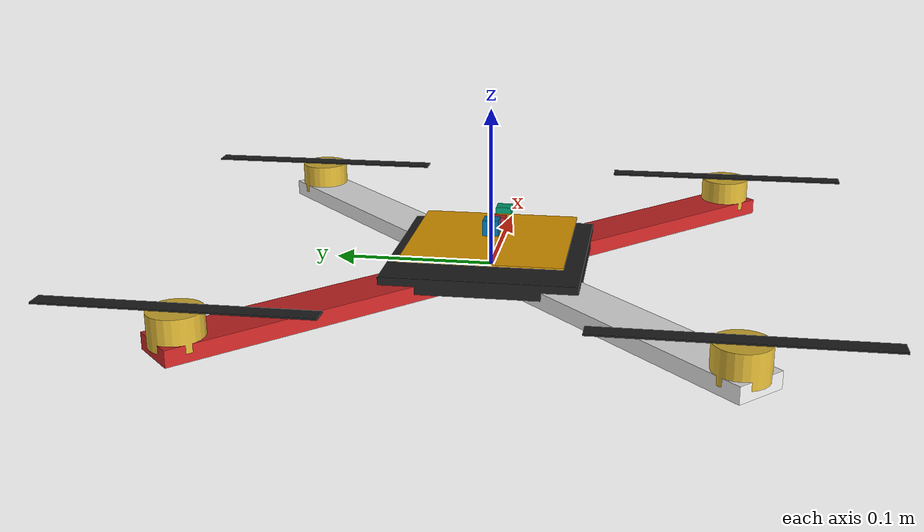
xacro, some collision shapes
<?xml version="1.0"?>
<robot xmlns:xacro="http://www.ros.org/wiki/xacro" name="Kwad">
	<xacro:property name="width" value="0.0315" />
	<xacro:property name="length" value="0.45" />
	<xacro:property name="height" value="0.01" />
	<xacro:property name="mass_fr" value="0.5" />
	<xacro:property name="mass_pr" value="0.0055" />
	<xacro:property name="pi_value" value="3.14159263" />
	<xacro:property name="radiusp" value="0.20" />
	<xacro:property name="prop_loc" value="0.15909" />
	<xacro:include filename="$(find urc_gazebo)/urdf/material.xacro" />
	<xacro:include filename="$(find urc_gazebo)/urdf/drone.gazebo" />
	<xacro:include filename="$(find urc_gazebo)/urdf/drone_inertials.xacro" />
	<!-- Define inertial macro -->
	<xacro:macro name="default_inertial" params="mass p ix_value iy_value iz_value" >
		<inertial>
			<origin xyz="0 0 0" rpy="0 0 ${p}" />
			<mass value="${mass}" />
			<inertia ixx="${ix_value}" ixy="0" ixz="0"
					 iyy="${iy_value}" iyz="0" izz="${iz_value}" />
		</inertial>
	</xacro:macro>
	<link name="base_link1">
		<visual>
			<origin xyz="0 0 0" rpy="0 0 ${pi_value/4}" />

			<geometry>
				<box size="${width} ${length} ${height}" />
			</geometry>

			<material name="red" />
		</visual>

		<collision>
			<origin xyz="0 0 0" rpy="0 0 ${pi_value/4}" />

			<geometry>
				<box size="${width} ${length} ${height}" />
			</geometry>
		</collision>

		<xacro:default_inertial mass="${mass_fr}" p="${pi_value/4}" ix_value="${0.04989/2}" iy_value="${0.04989/2}" iz_value="${0.24057/2}" />

	</link>
	<link name="base_link2">
		<visual>
			<origin xyz="0 0 0" rpy="0 0 ${-pi_value/4}" />

			<geometry>
				<box size="${width} ${length} ${height}" />
			</geometry>

			<material name="white" />
		</visual>

		<collision>
			<origin xyz="0 0 0" rpy="0 0 ${-pi_value/4}" />

			<geometry>
				<box size="${width} ${length} ${height}" />
			</geometry>
		</collision>

		<xacro:default_inertial mass="${mass_fr}" p="${-pi_value/4}" ix_value="${0.04989/2}" iy_value="${0.04989/2}" iz_value="${0.24057/2}" />
	</link>
	<link name="plate1">
		<visual>
			<origin xyz="0 0 0" rpy="0 0 0" />

			<geometry>
				<box size="${0.12} ${0.12} ${0.01}" />
			</geometry>

			<material name="black" />
		</visual>

		<collision>
			<origin xyz="0 0 0" rpy="0 0 0" />

			<geometry>
				<box size="${0.12} ${0.12} ${0.01}" />
			</geometry>
		</collision>

		<xacro:default_inertial mass="${0.01}" p="${0}" ix_value="${0}" iy_value="${0}" iz_value="${2.4-5}" />
	</link>

	<link name="plate2">
		<visual>
			<origin xyz="0 0 0" rpy="0 0 0" />

			<geometry>
				<box size="${0.05} ${0.03} ${0.005}" />
			</geometry>

			<material name="blue" />
		</visual>

		<collision>
			<origin xyz="0 0 0" rpy="0 0 0" />

			<geometry>
				<box size="${0.05} ${0.03} ${0.005}" />
			</geometry>
		</collision>

		<xacro:default_inertial mass="${0.001}" p="${0}" ix_value="${0}" iy_value="${0}" iz_value="${8.1666-7}" />
	</link>
	<link name="cyl1">
		<visual>
			<origin xyz="0 0 0" rpy="0 0 0" />

			<geometry>
				<cylinder radius="0.016" length="0.02" />
			</geometry>

			<material name="golden" />
		</visual>

		<collision>
			<origin xyz="0 0 0" rpy="0 0 0" />

			<geometry>
				<cylinder radius="0.016" length="0.02" />
			</geometry>
		</collision>

		<xacro:default_inertial mass="${0.01}" p="${0}" ix_value="${8.95e-6}" iy_value="${8.95e-6}" iz_value="${2.23e-4}" />
	</link>
	<link name="cyl2">
		<visual>
			<origin xyz="0 0 0" rpy="0 0 0" />

			<geometry>
				<cylinder radius="0.016" length="0.02" />
			</geometry>

			<material name="golden" />
		</visual>

		<collision>
			<origin xyz="0 0 0" rpy="0 0 0" />

			<geometry>
				<cylinder radius="0.016" length="0.02" />
			</geometry>
		</collision>

		<xacro:default_inertial mass="${0.01}" p="${0}" ix_value="${8.95e-6}" iy_value="${8.95e-6}" iz_value="${2.23e-4}" />
	</link>
	<link name="cyl3">
		<visual>
			<origin xyz="0 0 0" rpy="0 0 0" />

			<geometry>
				<cylinder radius="0.016" length="0.02" />
			</geometry>

			<material name="golden" />
		</visual>

		<collision>
			<origin xyz="0 0 0" rpy="0 0 0" />

			<geometry>
				<cylinder radius="0.016" length="0.02" />
			</geometry>
		</collision>

		<xacro:default_inertial mass="${0.01}" p="${0}" ix_value="${8.95e-6}" iy_value="${8.95e-6}" iz_value="${2.23e-4}" />
	</link>
	<link name="cyl4">
		<visual>
			<origin xyz="0 0 0" rpy="0 0 0" />

			<geometry>
				<cylinder radius="0.016" length="0.02" />
			</geometry>

			<material name="golden" />
		</visual>

		<collision>
			<origin xyz="0 0 0" rpy="0 0 0" />

			<geometry>
				<cylinder radius="0.016" length="0.02" />
			</geometry>
		</collision>

		<xacro:default_inertial mass="${0.01}" p="${0}" ix_value="${8.95e-6}" iy_value="${8.95e-6}" iz_value="${2.23e-4}" />
	</link>
	<link name="arduino">
		<visual>
			<origin xyz="0 0 0" rpy="0 0 0" />
			<geometry>
				<mesh filename="package://fly_bot/meshes/22V10.dae" scale="0.005 0.005 0.005" />
			</geometry>
		</visual>
		<collision>
			<origin xyz="0 0 0" rpy="0 0 0" />
			<geometry>
				<box size="0.1 0.1 0.001" />
			</geometry>
		</collision>
		<xacro:default_inertial mass="${0.05}" p="${0}" ix_value="${0}" iy_value="${0}" iz_value="${8.33333e-5}" />
	</link>
	<link name="camera_link">
		<visual>
			<origin xyz="0 0 0" rpy="0 0 0" />
			<geometry>
				<box size="0.01 0.01 0.01" />
			</geometry>

			<material name="red" />

		</visual>

		<collision>
			<origin xyz="0 0 0" rpy="0 0 0" />
			<geometry>
				<box size="0.01 0.01 0.01" />
			</geometry>
		</collision>

		<xacro:default_inertial mass="${1e-5}" p="${0}" ix_value="${1e-6}" iy_value="${1e-6}" iz_value="${1e-6}" />
	</link>

<!-- Front-Facing Camera -->

	<link name="cam/front">
          <visual>
            <geometry>
              <box size="0.01 0.01 0.01"/>
            </geometry>
          </visual>

        <collision>
          <geometry>
            <box size="0.01 0.01 0.01"/>
          </geometry>
        </collision>

        <xacro:box_inertia m="0.1" w="0.1" d="0.1" h="0.1"/>
        </link>

        <joint name="front_cam_joint" type="fixed">
	  <axis xyz="1 0 0"/>
	  <!-- Edit these parameters to change camera orientation -->
	  <origin xyz="0.06 0 0.01" rpy = "0 0 0"/>
	  <parent link="plate1"/>
	  <child link="cam/front"/>
        </joint>

        <!-- Bottom-Facing Camera -->

        <link name="cam/bottom">
          <visual>
            <geometry>
              <box size="0.01 0.01 0.01"/>
            </geometry>
          </visual>

        <collision>
          <geometry>
            <box size="0.01 0.01 0.01"/>
          </geometry>
        </collision>

        <xacro:box_inertia m="0.1" w="0.1" d="0.1" h="0.1"/>
        </link>

        <joint name="bottom_cam_joint" type="fixed">
	  <axis xyz="1 0 0"/>
	  <!-- Edit these parameters to change camera orientation -->
	  <origin xyz="0 0 0" rpy = "0 ${pi_value/2} 0"/>
	  <parent link="plate1"/>
	  <child link="cam/bottom"/>
        </joint>

        <link name="gps">
    	<visual>
     	 <geometry>
     	   <box size="0.01 0.01 0.01"/>
     	 </geometry>
    	</visual>

   	<collision>
          <geometry>
            <box size="0.01 0.01 0.01"/>
   	 </geometry>
        </collision>

    	<xacro:box_inertia m="0.1" w="0.1" d="0.1" h="0.1"/>
  	</link>

   	<joint name="gps_joint" type="fixed">
		<axis xyz="1 0 0"/>
		<origin xyz="0 0 0.02"/>
		<parent link="plate1"/>
		<child link="gps"/>
	</joint>

       <link name="imu">
    	<visual>
      	<geometry>
        	<box size="0.01 0.01 0.01"/>
      	</geometry>
    	</visual>

    	<collision>
      	<geometry>
       	 <box size="0.01 0.01 0.01"/>
      	</geometry>
    	</collision>

    	<xacro:box_inertia m="0.1" w="0.1" d="0.1" h="0.1"/>
  	</link>

  	<joint name="imu_joint" type="fixed">
		<axis xyz="1 0 0"/>
		<origin xyz="0 0 -0.02"/>
		<parent link="plate1"/>
		<child link="imu"/>
	</joint>

	<!-- Propellers of the quad: fr, fl, br, bl -->
	<link name="prop_front_right">
		<visual>
			<origin xyz="0 0 0" rpy="0 0 0" />

			<geometry>
				<box size="${0.03302/3} ${radiusp*0.8} ${0.001}" />
			</geometry>

			<material name="black" />
		</visual>

		<collision>
			<origin xyz="0 0 0" rpy="0 0 0" />

			<geometry>
				<box size="${0.03302/3} ${radiusp*0.8} ${0.001}" />
			</geometry>
		</collision>

		<xacro:default_inertial mass="${mass_pr}" p="${0}" ix_value="${0}" iy_value="${0}" iz_value="${4.42448e-5}" />
	</link>

	<link name="prop_front_left">
		<visual>
			<origin xyz="0 0 0" rpy="0 0 0" />

			<geometry>
				<box size="${0.03302/3} ${radiusp*0.8} ${0.001}" />
			</geometry>

			<material name="black"/>
		</visual>

		<collision>
			<origin xyz="0 0 0" rpy="0 0 0" />

			<geometry>
				<box size="${0.03302/3} ${radiusp*0.8} ${0.001}" />
			</geometry>
		</collision>

		<xacro:default_inertial mass="${mass_pr}" p="${0}"  ix_value="${0}" iy_value="${0}" iz_value="${4.42448e-5}" />

	</link>

	<link name="prop_back_right">
		<visual>
			<origin xyz="0 0 0" rpy="0 0 0" />

			<geometry>
				<box size="${0.03302/3} ${radiusp*0.8} ${0.001}" />
			</geometry>

			<material name="black"/>
		</visual>

		<collision>
			<origin xyz="0 0 0" rpy="0 0 0" />

			<geometry>
				<box size="${0.03302/3} ${radiusp*0.8} ${0.001}" />
			</geometry>
		</collision>

		<xacro:default_inertial mass="${mass_pr}" p="${0}"  ix_value="${0}" iy_value="${0}" iz_value="${4.42448e-5}" />

	</link>

	<link name="prop_back_left">
		<visual>
			<origin xyz="0 0 0" rpy="0 0 0" />

			<geometry>
				<box size="${0.03302/3} ${radiusp*0.8} ${0.001}" />
			</geometry>

			<material name="black"/>
		</visual>

		<collision>
			<origin xyz="0 0 0" rpy="0 0 0" />

			<geometry>
				<box size="${0.03302/3} ${radiusp*0.8} ${0.001}" />
			</geometry>
		</collision>

		<xacro:default_inertial mass="${mass_pr}" p="${0}"  ix_value="${0}" iy_value="${0}" iz_value="${4.42448e-5}" />

	</link>
	<!-- Define the joint between the arms of the frame -->
	<joint name="center" type="fixed">
		<parent link="base_link1" />
		<child link="base_link2" />

		<origin xyz="0 0 0" rpy="0 0 0"/>
		<axis xyz="0 0 1" />
	</joint>
	<!-- Define joint between prop fr and frame -->
	<joint name="joint_front_right_prop" type="continuous">
		<parent link="base_link2" />
		<child link="prop_front_right" />
		<origin xyz="${prop_loc - 0.01} ${prop_loc - 0.01} 0.021" rpy="0 0 0"/>
		<axis xyz="0 0 1" />
	</joint>
	<!-- Define joint between prop fl and frame -->
	<joint name="joint_front_left_prop" type="continuous">
		<parent link="base_link1" />
		<child link="prop_front_left" />
		<origin xyz="${-prop_loc + 0.01} ${prop_loc - 0.01} 0.021" rpy="0 0 0" />
		<axis xyz="0 0 1" />
	</joint>
<!-- Define joint between prop br and frame -->
	<joint name="joint_back_right_prop" type="continuous">
		<parent link="base_link1" />
		<child link="prop_back_right" />
		<origin xyz="${prop_loc - 0.01} ${-prop_loc + 0.01} 0.021" rpy="0 0 0" />
		<axis xyz="0 0 1" />
	</joint>
<!-- Define joint between prop br and frame -->
	<joint name="joint_back_left_prop" type="continuous">
		<parent link="base_link2" />
		<child link="prop_back_left" />
		<origin xyz="${-prop_loc + 0.01} ${-prop_loc + 0.01} 0.021" rpy="0 0 0" />
		<axis xyz="0 0 1" />
	</joint>
<!-- Define joint between plate1 and frame -->
	<joint name="joint_plate1_frame" type="fixed">
		<parent link="base_link2" />
		<child link="plate1" />
		<origin xyz="${0} ${0} 0.005" rpy="0 0 0" />
		<axis xyz="0 0 1" />
	</joint>
<!-- Define joint between plate1 and plate2 -->
	<joint name="joint_plate2_frame" type="fixed">
		<parent link="plate1" />
		<child link="plate2" />
		<origin xyz="${0} ${0} 0.007" rpy="0 0 0" />
		<axis xyz="0 0 1" />
	</joint>
<!-- Define joint between cyl1 and frame -->
	<joint name="joint_cyl1_frame" type="fixed">
		<parent link="base_link2" />
		<child link="cyl1" />
		<origin xyz="${prop_loc - 0.01} ${prop_loc - 0.01} 0.01" rpy="0 0 0" />
		<axis xyz="0 0 1" />
	</joint>
<!-- Define joint between cyl2 and frame -->
	<joint name="joint_cyl2_frame" type="fixed">
		<parent link="base_link2" />
		<child link="cyl2" />
		<origin xyz="${-prop_loc + 0.01} ${-prop_loc + 0.01} 0.01" rpy="0 0 0" />
		<axis xyz="0 0 1" />
	</joint>
<!-- Define joint between cyl3 and frame -->
	<joint name="joint_cyl3_frame" type="fixed">
		<parent link="base_link1" />
		<child link="cyl3" />
		<origin xyz="${-prop_loc + 0.01} ${prop_loc - 0.01} 0.01" rpy="0 0 0" />
		<axis xyz="0 0 1" />
	</joint>
<!-- Define joint between cyl4 and frame -->
	<joint name="joint_cyl4_frame" type="fixed">
		<parent link="base_link1" />
		<child link="cyl4" />
		<origin xyz="${prop_loc - 0.01} ${-prop_loc + 0.01} 0.01" rpy="0 0 0" />
		<axis xyz="0 0 1" />
	</joint>
<!-- Define joint between Arduino and frame -->
	<joint name="joint_arduino_frame" type="fixed">
		<parent link="plate2" />
		<child link="arduino" />
		<origin xyz="${0} ${0} 0.005" rpy="0 0 0" />
		<axis xyz="0 0 1" />
	</joint>
<!-- Define joint between Arduino and frame -->
	<joint name="joint_camera_frame" type="fixed">
		<parent link="plate2" />
		<child link="camera_link" />
		<origin xyz="${0.03} ${0} 0.005" rpy="0 0.1 0" />
		<axis xyz="0 0 1" />
	</joint>
<!-- Add transmission elements -->
	<transmission name="front_right_motor_joint" >
		<type>transmission_interface/SimpleTransmission</type>
		<joint name="joint_front_right_prop">
			<hardwareInterface>hardware_interface/VelocityJointInterface</hardwareInterface>
		</joint>
		<actuator name="BLDC_motor1">
			<hardwareInterface>hardware_interface/VelocityJointInterface</hardwareInterface>
			<mechanicalReduction>1</mechanicalReduction>
		</actuator>
	</transmission>

	<transmission name="front_left_motor_joint" >
		<type>transmission_interface/SimpleTransmission</type>
		<joint name="joint_front_left_prop">
			<hardwareInterface>hardware_interface/VelocityJointInterface</hardwareInterface>
		</joint>
		<actuator name="BLDC_motor2">
			<hardwareInterface>hardware_interface/VelocityJointInterface</hardwareInterface>
			<mechanicalReduction>1</mechanicalReduction>
		</actuator>
	</transmission>

	<transmission name="back_right_motor_joint" >
		<type>transmission_interface/SimpleTransmission</type>
		<joint name="joint_back_right_prop">
			<hardwareInterface>hardware_interface/VelocityJointInterface</hardwareInterface>
		</joint>
		<actuator name="BLDC_motor3">
			<hardwareInterface>hardware_interface/VelocityJointInterface</hardwareInterface>
			<mechanicalReduction>1</mechanicalReduction>
		</actuator>
	</transmission>

	<transmission name="back_left_motor_joint" >
		<type>transmission_interface/SimpleTransmission</type>
		<joint name="joint_back_left_prop">
			<hardwareInterface>hardware_interface/VelocityJointInterface</hardwareInterface>
		</joint>
		<actuator name="BLDC_motor4">
			<hardwareInterface>hardware_interface/VelocityJointInterface</hardwareInterface>
			<mechanicalReduction>1</mechanicalReduction>
		</actuator>
	</transmission>

</robot>

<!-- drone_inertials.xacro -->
<!--  xacro macros for intertials.
    Define xacro macros for math constants and inertials:

    - solid cuboid
    - solid cylinder
    - null (a placeholder inertial for logical link elements)
 -->
<robot name="drone_inertials" xmlns:xacro="http://ros.org/wiki/xacro">

  <!-- Define some commonly used intertial properties  -->
  <xacro:macro name="box_inertia" params="m w h d">
    <inertial>
      <origin xyz="0 0 0" rpy="${pi/2} 0 ${pi/2}"/>
      <mass value="${m}"/>
      <inertia ixx="${(m/12) * (h*h + d*d)}" ixy="0.0" ixz="0.0" iyy="${(m/12) * (w*w + d*d)}" iyz="0.0" izz="${(m/12) * (w*w + h*h)}"/>
    </inertial>
  </xacro:macro>

  <xacro:macro name="cylinder_inertia" params="m r h">
    <inertial>
      <origin xyz="0 0 0" rpy="${pi/2} 0 0" />
      <mass value="${m}"/>
      <inertia ixx="${(m/12) * (3*r*r + h*h)}" ixy = "0" ixz = "0" iyy="${(m/12) * (3*r*r + h*h)}" iyz = "0" izz="${(m/2) * (r*r)}"/>
    </inertial>
  </xacro:macro>

  <xacro:macro name="sphere_inertia" params="m r">
    <inertial>
      <mass value="${m}"/>
      <inertia ixx="${(2/5) * m * (r*r)}" ixy="0.0" ixz="0.0" iyy="${(2/5) * m * (r*r)}" iyz="0.0" izz="${(2/5) * m * (r*r)}"/>
    </inertial>
  </xacro:macro>

    <!-- Null inertial element. This is needed to make the model work with
       Gazebo. -->
  <xacro:macro name="null_inertial">
    <inertial>
      <mass value="0.001"/>
      <inertia ixx="0.001" ixy="0" ixz="0" iyy="0.001" iyz="0" izz="0.001"/>
    </inertial>
  </xacro:macro>

  <!-- Inertia of a solid cuboid. Width is measured along the x axis, depth
       along the y axis, and height along the z axis. -->
  <xacro:macro name="solid_cuboid_inertial"
               params="width depth height mass *origin">
    <inertial>
      <xacro:insert_block name="origin"/>
      <mass value="${mass}"/>
      <inertia ixx="${mass * (depth * depth + height * height) / 12}"
               ixy="0" ixz="0"
               iyy="${mass * (width * width + height * height) / 12}"
               iyz="0"
               izz="${mass * (width * width + depth * depth) / 12}"/>
    </inertial>
  </xacro:macro>

  <xacro:macro name="thick_walled_tube_inertial"
               params="inner_rad outer_rad height mass">
    <inertial>
      <mass value="${mass}"/>
      <inertia ixx="${(1 / 12) * mass * (3 * (inner_rad * inner_rad +
                    outer_rad * outer_rad) + height * height)}"
               ixy="0" ixz="0"
               iyy="${(1 / 12) * mass * (3 * (inner_rad * inner_rad +
                    outer_rad * outer_rad) + height * height)}"
               iyz="0"
               izz="${mass * (inner_rad * inner_rad +
                    outer_rad * outer_rad) / 2}"/>
    </inertial>
  </xacro:macro>
</robot>
